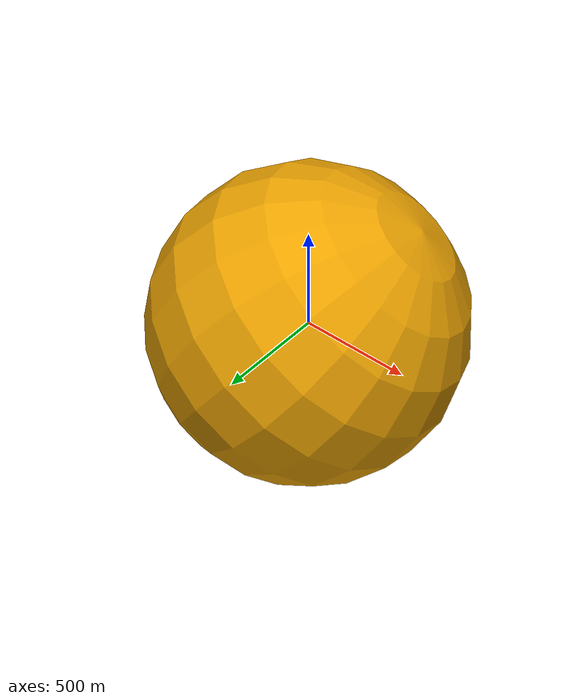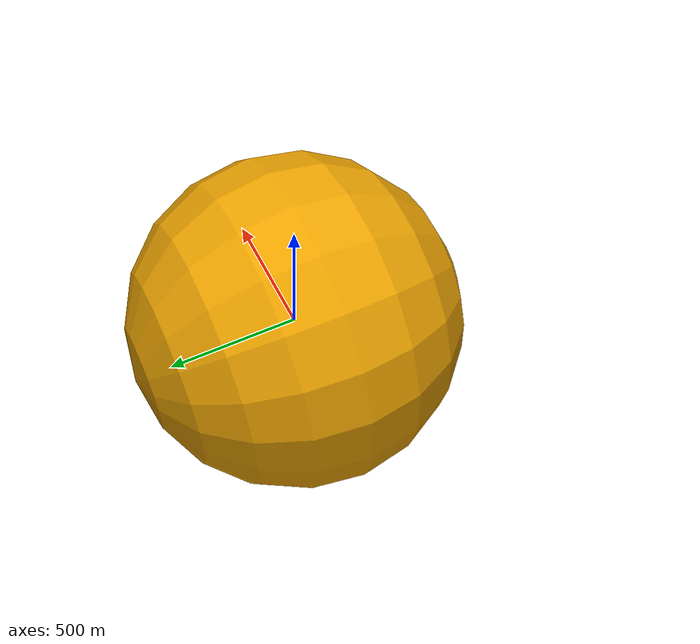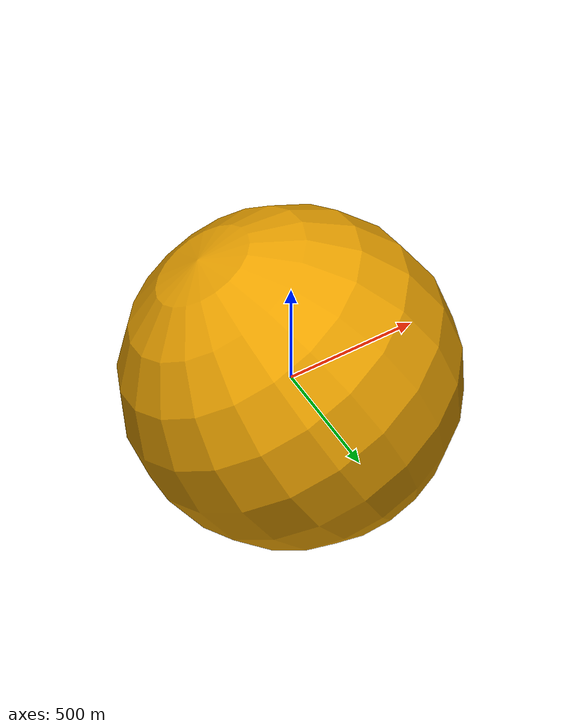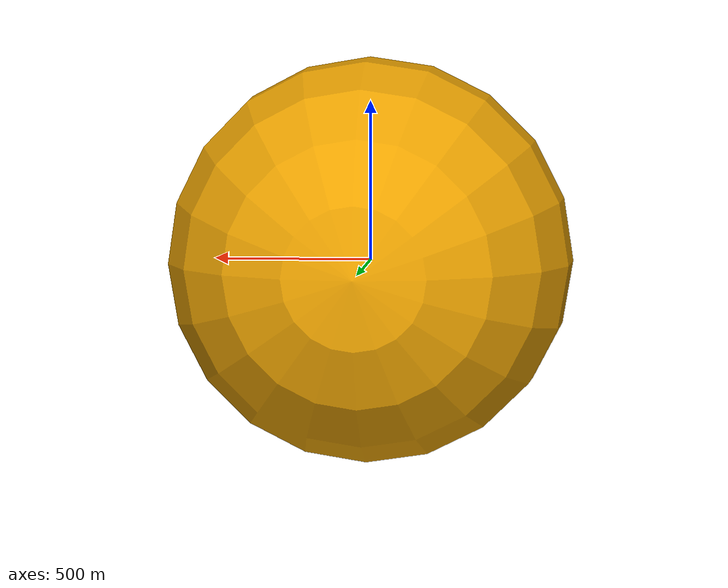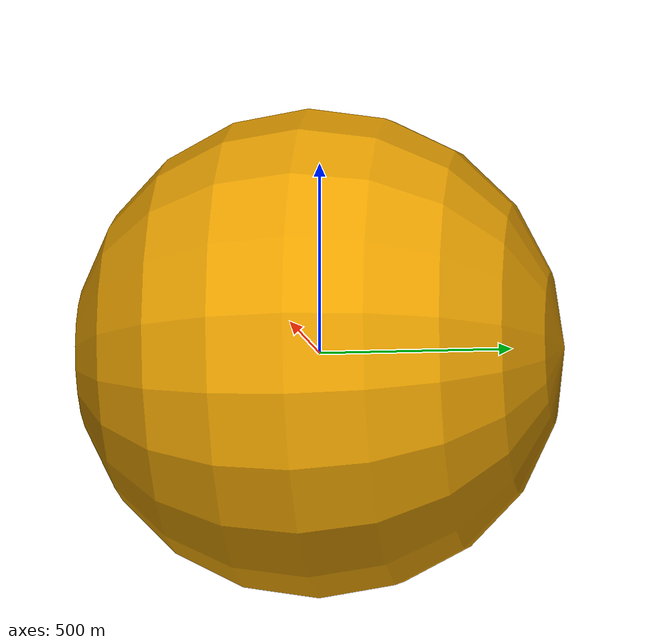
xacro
<?xml version="1.0"?>
<robot name="earth" xmlns:xacro="http://www.ros.org/wiki/xacro">

    <!-- Body link definition -->
    <link name="earth">
        <inertial>
            <origin xyz="0 0 0" />
            <mass value="1.0" />
            <inertia ixx="1.0" ixy="0.0" ixz="0.0" iyy="100.0" iyz="0.0" izz="1.0" />
        </inertial>
        <visual>
            <origin rpy="-1.57 -3.14 0" xyz="0 0 0" />
            <geometry>
                <sphere radius="637.1" />
            </geometry>
        </visual>
        <collision>
            <origin rpy="-1.57 -3.14 0" xyz="0 0 0" />
            <geometry>
                <sphere radius="637.1"  />
            </geometry>
        </collision>
    </link>

    <!-- Gazebo configuration for body_link and dock_link -->
    <gazebo reference="earth">
        <gravity>0</gravity>
        <material>planet/earth</material>
    </gazebo>

</robot>
